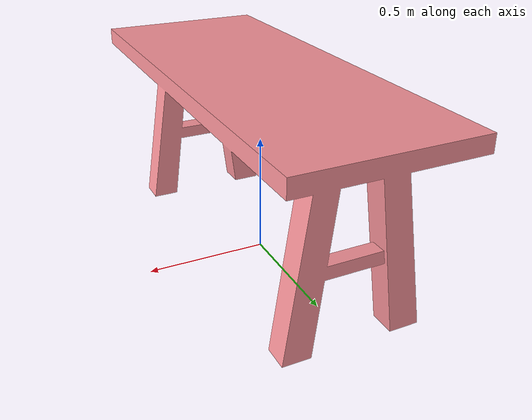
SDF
<?xml version="1.0" encoding="utf-8"?>
<sdf version="1.6">
  <model name="aws_robomaker_residential_KitchenTable_01">
    <link name="link">
      <inertial>
        <mass>12.3</mass>
        <inertia>
          <ixx>0.01</ixx>
          <ixy>0</ixy>
          <ixz>0</ixz>
          <iyy>0.01</iyy>
          <iyz>0</iyz>
          <izz>0.01</izz>
        </inertia>
      </inertial>
      <collision name="collision">
        <geometry>
          <mesh>
            <uri>model://aws_robomaker_residential_KitchenTable_01/meshes/aws_KitchenTable_01_collision.DAE</uri>
            <scale>1 1 1</scale>
          </mesh>
        </geometry>
      </collision>
      <visual name="visual">
        <geometry>
          <mesh>
            <uri>model://aws_robomaker_residential_KitchenTable_01/meshes/aws_KitchenTable_01_visual.DAE</uri>
          </mesh>
        </geometry>
        <meta>
          <layer> 1 </layer>
        </meta>
      </visual>
    </link>
  </model>
</sdf>
